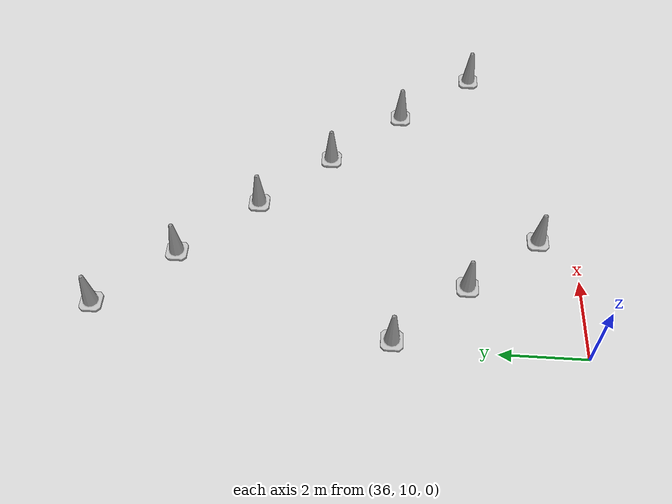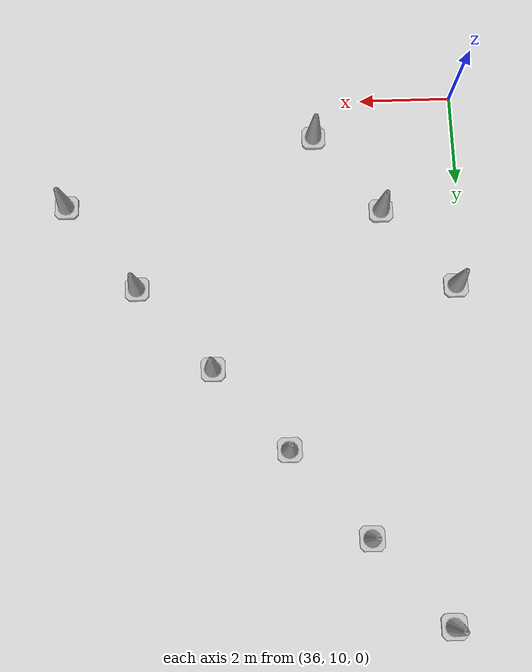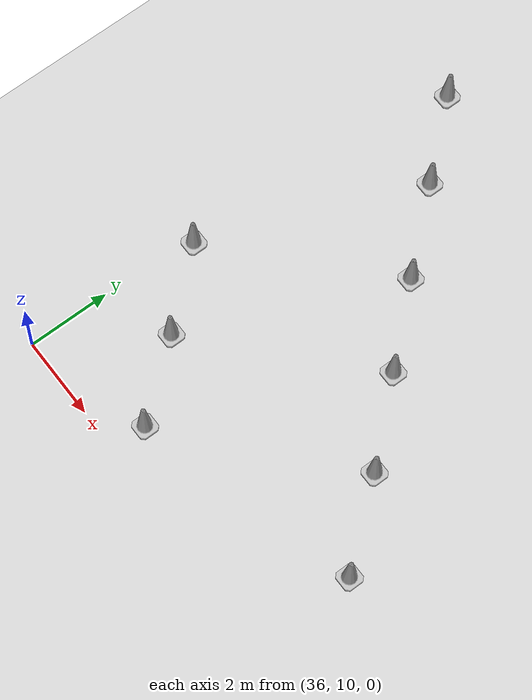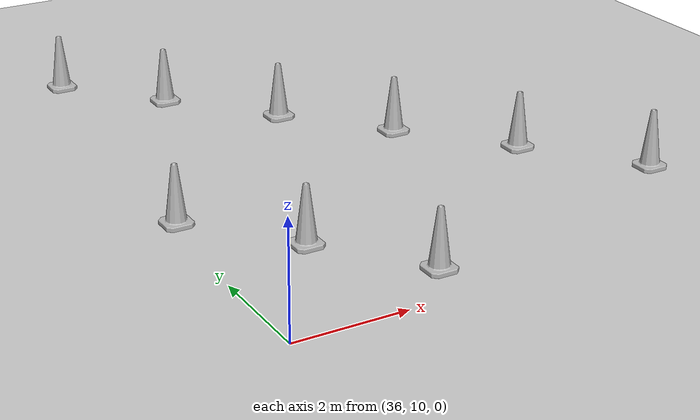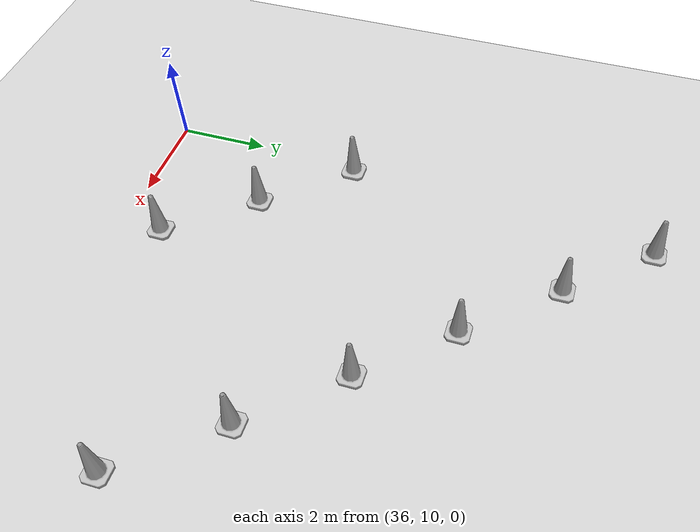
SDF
<sdf version="1.7">
 <world name="default">
  <model name="ground_plane">
   <static>1</static>
   <link name="link">
    <collision name="collision">
     <geometry><plane><normal>0 0 1</normal><size>125 125</size></plane></geometry>
     <surface>
      <contact><collide_bitmask>65535</collide_bitmask></contact>
      <friction><ode><mu>100</mu><mu2>50</mu2></ode></friction>
     </surface>
    </collision>
    <visual name="visual">
     <cast_shadows>0</cast_shadows>
     <geometry><plane><normal>0 0 1</normal><size>125 125</size></plane></geometry>
     <material>
      <script><uri>file://media/materials/scripts/gazebo.material</uri><name>Gazebo/Grey</name></script>
     </material>
    </visual>
   </link>
  </model>
  <model name="Construction Cone 80">
   <link name="link">
    <collision name="collision">
     <geometry>
      <mesh><scale>10 10 10</scale><uri>model://construction_cone/meshes/construction_cone.dae</uri></mesh>
     </geometry>
    </collision>
    <visual name="visual">
     <geometry>
      <mesh><scale>10 10 10</scale><uri>model://construction_cone/meshes/construction_cone.dae</uri></mesh>
     </geometry>
    </visual>
    <inertial>
     <inertia><ixx>1</ixx><ixy>0</ixy><ixz>0</ixz><iyy>1</iyy><iyz>0</iyz><izz>1</izz></inertia>
     <mass>1</mass>
    </inertial>
   </link>
   <pose>36.761248381191265 21.219855827656048 0 0 0 0</pose>
  </model>
  <model name="Construction Cone 91">
   <link name="link">
    <collision name="collision">
     <geometry>
      <mesh><scale>10 10 10</scale><uri>model://construction_cone/meshes/construction_cone.dae</uri></mesh>
     </geometry>
    </collision>
    <visual name="visual">
     <geometry>
      <mesh><scale>10 10 10</scale><uri>model://construction_cone/meshes/construction_cone.dae</uri></mesh>
     </geometry>
    </visual>
    <inertial>
     <inertia><ixx>1</ixx><ixy>0</ixy><ixz>0</ixz><iyy>1</iyy><iyz>0</iyz><izz>1</izz></inertia>
     <mass>1</mass>
    </inertial>
   </link>
   <pose>38.25974838119126 19.50535582765605 0 0 0 0</pose>
  </model>
  <model name="Construction Cone 99">
   <link name="link">
    <collision name="collision">
     <geometry>
      <mesh><scale>10 10 10</scale><uri>model://construction_cone/meshes/construction_cone.dae</uri></mesh>
     </geometry>
    </collision>
    <visual name="visual">
     <geometry>
      <mesh><scale>10 10 10</scale><uri>model://construction_cone/meshes/construction_cone.dae</uri></mesh>
     </geometry>
    </visual>
    <inertial>
     <inertia><ixx>1</ixx><ixy>0</ixy><ixz>0</ixz><iyy>1</iyy><iyz>0</iyz><izz>1</izz></inertia>
     <mass>1</mass>
    </inertial>
   </link>
   <pose>39.83474838119126 17.70535582765605 0 0 0 0</pose>
  </model>
  <model name="Construction Cone 106">
   <link name="link">
    <collision name="collision">
     <geometry>
      <mesh><scale>10 10 10</scale><uri>model://construction_cone/meshes/construction_cone.dae</uri></mesh>
     </geometry>
    </collision>
    <visual name="visual">
     <geometry>
      <mesh><scale>10 10 10</scale><uri>model://construction_cone/meshes/construction_cone.dae</uri></mesh>
     </geometry>
    </visual>
    <inertial>
     <inertia><ixx>1</ixx><ixy>0</ixy><ixz>0</ixz><iyy>1</iyy><iyz>0</iyz><izz>1</izz></inertia>
     <mass>1</mass>
    </inertial>
   </link>
   <pose>41.36474838119126 15.995355827656049 0 0 0 0</pose>
  </model>
  <model name="Construction Cone 113">
   <link name="link">
    <collision name="collision">
     <geometry>
      <mesh><scale>10 10 10</scale><uri>model://construction_cone/meshes/construction_cone.dae</uri></mesh>
     </geometry>
    </collision>
    <visual name="visual">
     <geometry>
      <mesh><scale>10 10 10</scale><uri>model://construction_cone/meshes/construction_cone.dae</uri></mesh>
     </geometry>
    </visual>
    <inertial>
     <inertia><ixx>1</ixx><ixy>0</ixy><ixz>0</ixz><iyy>1</iyy><iyz>0</iyz><izz>1</izz></inertia>
     <mass>1</mass>
    </inertial>
   </link>
   <pose>36.189748381191265 14.33035582765605 0 0 0 0</pose>
  </model>
  <model name="Construction Cone 114">
   <link name="link">
    <collision name="collision">
     <geometry>
      <mesh><scale>10 10 10</scale><uri>model://construction_cone/meshes/construction_cone.dae</uri></mesh>
     </geometry>
    </collision>
    <visual name="visual">
     <geometry>
      <mesh><scale>10 10 10</scale><uri>model://construction_cone/meshes/construction_cone.dae</uri></mesh>
     </geometry>
    </visual>
    <inertial>
     <inertia><ixx>1</ixx><ixy>0</ixy><ixz>0</ixz><iyy>1</iyy><iyz>0</iyz><izz>1</izz></inertia>
     <mass>1</mass>
    </inertial>
   </link>
   <pose>42.94424838119127 14.226855827656046 0 0 0 0</pose>
  </model>
  <model name="Construction Cone 121">
   <link name="link">
    <collision name="collision">
     <geometry>
      <mesh><scale>10 10 10</scale><uri>model://construction_cone/meshes/construction_cone.dae</uri></mesh>
     </geometry>
    </collision>
    <visual name="visual">
     <geometry>
      <mesh><scale>10 10 10</scale><uri>model://construction_cone/meshes/construction_cone.dae</uri></mesh>
     </geometry>
    </visual>
    <inertial>
     <inertia><ixx>1</ixx><ixy>0</ixy><ixz>0</ixz><iyy>1</iyy><iyz>0</iyz><izz>1</izz></inertia>
     <mass>1</mass>
    </inertial>
   </link>
   <pose>37.67924838119127 12.606855827656048 0 0 0 0</pose>
  </model>
  <model name="Construction Cone 123">
   <link name="link">
    <collision name="collision">
     <geometry>
      <mesh><scale>10 10 10</scale><uri>model://construction_cone/meshes/construction_cone.dae</uri></mesh>
     </geometry>
    </collision>
    <visual name="visual">
     <geometry>
      <mesh><scale>10 10 10</scale><uri>model://construction_cone/meshes/construction_cone.dae</uri></mesh>
     </geometry>
    </visual>
    <inertial>
     <inertia><ixx>1</ixx><ixy>0</ixy><ixz>0</ixz><iyy>1</iyy><iyz>0</iyz><izz>1</izz></inertia>
     <mass>1</mass>
    </inertial>
   </link>
   <pose>44.469748381191266 12.350355827656045 0 0 0 0</pose>
  </model>
  <model name="Construction Cone 131">
   <link name="link">
    <collision name="collision">
     <geometry>
      <mesh><scale>10 10 10</scale><uri>model://construction_cone/meshes/construction_cone.dae</uri></mesh>
     </geometry>
    </collision>
    <visual name="visual">
     <geometry>
      <mesh><scale>10 10 10</scale><uri>model://construction_cone/meshes/construction_cone.dae</uri></mesh>
     </geometry>
    </visual>
    <inertial>
     <inertia><ixx>1</ixx><ixy>0</ixy><ixz>0</ixz><iyy>1</iyy><iyz>0</iyz><izz>1</izz></inertia>
     <mass>1</mass>
    </inertial>
   </link>
   <pose>39.06974838119126 10.865355827656046 0 0 0 0</pose>
  </model>
 </world>
</sdf>
